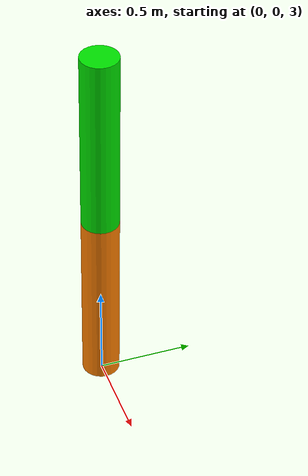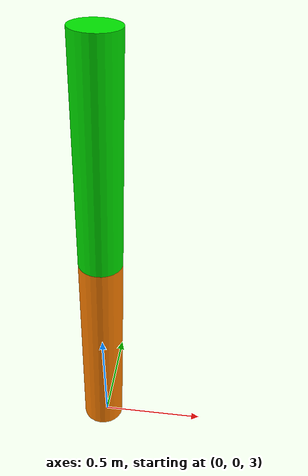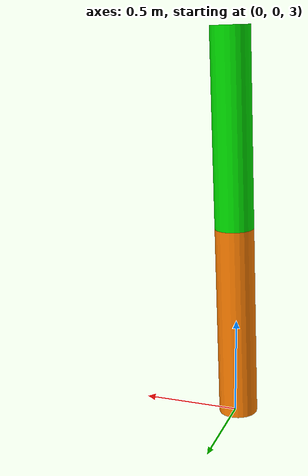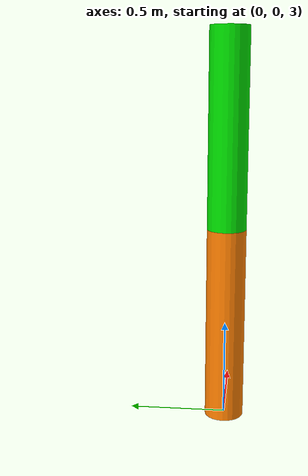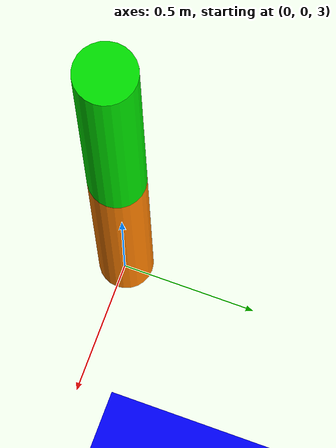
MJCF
<mujoco model="pendulum">

<worldbody>
    <!-- LIGHT -->
    <light diffuse=".5 .5 .5" pos="0 0 4" dir="0 0 -1" />

    <!-- PLANE -->
    <geom type="plane" size="2 2 0.1" rgba="0 0 1 1" />

    <!-- CYLINDERS -->
    <body pos="0 0 3.5" euler="0 2 0">
        <joint name="pin" type="hinge" axis="0 1 0" pos="0 0 -0.5" frictionloss="0.3"/>
        <geom type="cylinder" size="0.1 0.5" rgba="1 0.5 0 1" mass="1"/>
        <body pos="0 0 1" euler="0 0 0">
            <joint name="pin2" type="hinge" axis="0 1 0" pos="0 0 -0.5" frictionloss="0.3" />
            <geom type="cylinder" size="0.1 0.5" rgba="0 .9 0 1" mass="1" />
        </body>
    </body>

</worldbody>

</mujoco>
